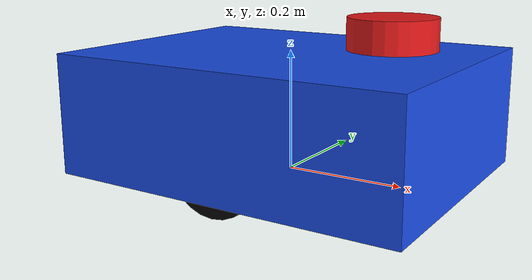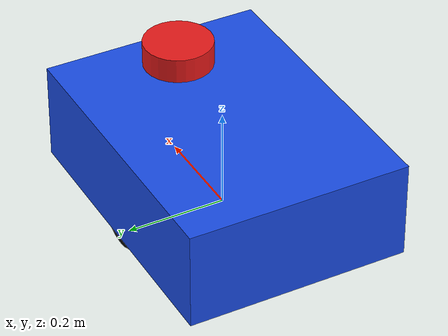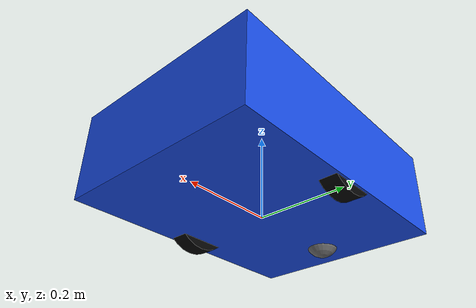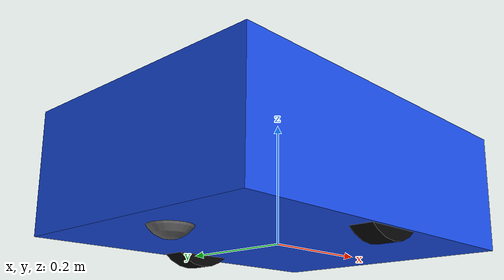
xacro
<?xml version="1.0"?>
<robot name="server_clean_robot" xmlns:xacro="http://www.ros.org/wiki/xacro">

  <xacro:property name="base_length" value="0.60"/>
  <xacro:property name="base_width" value="0.45"/>
  <xacro:property name="base_height" value="0.20"/>
  <xacro:property name="wheel_radius" value="0.08"/>
  <xacro:property name="wheel_width" value="0.04"/>
  <xacro:property name="wheel_separation" value="0.40"/>

  <link name="base_footprint"/>

  <joint name="base_footprint_joint" type="fixed">
    <parent link="base_footprint"/>
    <child link="base_link"/>
    <origin xyz="0 0 0.10" rpy="0 0 0"/>
  </joint>

  <link name="base_link">
    <visual>
      <geometry>
        <box size="${base_length} ${base_width} ${base_height}"/>
      </geometry>
      <material name="blue">
        <color rgba="0.1 0.3 0.9 1.0"/>
      </material>
    </visual>
    <collision>
      <geometry>
        <box size="${base_length} ${base_width} ${base_height}"/>
      </geometry>
    </collision>
    <inertial>
      <mass value="15.0"/>
      <origin xyz="0 0 0"/>
      <inertia ixx="0.35" ixy="0" ixz="0" iyy="0.50" iyz="0" izz="0.60"/>
    </inertial>
  </link>

  <link name="left_wheel_link">
    <visual>
      <origin xyz="0 0 0" rpy="1.5708 0 0"/>
      <geometry>
        <cylinder radius="${wheel_radius}" length="${wheel_width}"/>
      </geometry>
      <material name="black">
        <color rgba="0.02 0.02 0.02 1"/>
      </material>
    </visual>
    <collision>
      <origin xyz="0 0 0" rpy="1.5708 0 0"/>
      <geometry>
        <cylinder radius="${wheel_radius}" length="${wheel_width}"/>
      </geometry>
    </collision>
    <inertial>
      <mass value="1.0"/>
      <origin xyz="0 0 0"/>
      <inertia ixx="0.003" ixy="0" ixz="0" iyy="0.003" iyz="0" izz="0.006"/>
    </inertial>
  </link>

  <joint name="left_wheel_joint" type="continuous">
    <parent link="base_link"/>
    <child link="left_wheel_link"/>
    <origin xyz="0 ${wheel_separation/2} -0.04" rpy="0 0 0"/>
    <axis xyz="0 1 0"/>
  </joint>

  <link name="right_wheel_link">
    <visual>
      <origin xyz="0 0 0" rpy="1.5708 0 0"/>
      <geometry>
        <cylinder radius="${wheel_radius}" length="${wheel_width}"/>
      </geometry>
      <material name="black">
        <color rgba="0.02 0.02 0.02 1"/>
      </material>
    </visual>
    <collision>
      <origin xyz="0 0 0" rpy="1.5708 0 0"/>
      <geometry>
        <cylinder radius="${wheel_radius}" length="${wheel_width}"/>
      </geometry>
    </collision>
    <inertial>
      <mass value="1.0"/>
      <origin xyz="0 0 0"/>
      <inertia ixx="0.003" ixy="0" ixz="0" iyy="0.003" iyz="0" izz="0.006"/>
    </inertial>
  </link>

  <joint name="right_wheel_joint" type="continuous">
    <parent link="base_link"/>
    <child link="right_wheel_link"/>
    <origin xyz="0 -${wheel_separation/2} -0.04" rpy="0 0 0"/>
    <axis xyz="0 1 0"/>
  </joint>

  <link name="caster_link">
    <visual>
      <geometry>
        <sphere radius="0.04"/>
      </geometry>
      <material name="gray">
        <color rgba="0.4 0.4 0.4 1"/>
      </material>
    </visual>
    <collision>
      <geometry>
        <sphere radius="0.04"/>
      </geometry>
    </collision>
    <inertial>
      <mass value="0.2"/>
      <origin xyz="0 0 0"/>
      <inertia ixx="0.0001" ixy="0" ixz="0" iyy="0.0001" iyz="0" izz="0.0001"/>
    </inertial>
  </link>

  <joint name="caster_joint" type="fixed">
    <parent link="base_link"/>
    <child link="caster_link"/>
    <origin xyz="-0.22 0 -0.08" rpy="0 0 0"/>
  </joint>

  <link name="laser_link">
    <visual>
      <geometry>
        <cylinder radius="0.07" length="0.05"/>
      </geometry>
      <material name="red">
        <color rgba="0.9 0.1 0.1 1"/>
      </material>
    </visual>
    <collision>
      <geometry>
        <cylinder radius="0.07" length="0.05"/>
      </geometry>
    </collision>
    <inertial>
      <mass value="0.2"/>
      <origin xyz="0 0 0"/>
      <inertia ixx="0.0002" ixy="0" ixz="0" iyy="0.0002" iyz="0" izz="0.0002"/>
    </inertial>
  </link>

  <joint name="laser_joint" type="fixed">
    <parent link="base_link"/>
    <child link="laser_link"/>
    <origin xyz="0.18 0 0.14" rpy="0 0 0"/>
  </joint>

  <gazebo reference="base_link">
    <material>Gazebo/Blue</material>
  </gazebo>

  <gazebo reference="left_wheel_link">
    <material>Gazebo/Black</material>
    <mu1>1.0</mu1>
    <mu2>1.0</mu2>
  </gazebo>

  <gazebo reference="right_wheel_link">
    <material>Gazebo/Black</material>
    <mu1>1.0</mu1>
    <mu2>1.0</mu2>
  </gazebo>

  <gazebo reference="laser_link">
    <material>Gazebo/Red</material>
    <sensor type="ray" name="laser_sensor">
      <pose>0 0 0 0 0 0</pose>
      <visualize>true</visualize>
      <update_rate>10</update_rate>
      <ray>
        <scan>
          <horizontal>
            <samples>720</samples>
            <resolution>1</resolution>
            <min_angle>-3.14159</min_angle>
            <max_angle>3.14159</max_angle>
          </horizontal>
        </scan>
        <range>
          <min>0.12</min>
          <max>8.0</max>
          <resolution>0.01</resolution>
        </range>
      </ray>
      <plugin name="gazebo_ros_laser" filename="libgazebo_ros_laser.so">
        <topicName>/scan</topicName>
        <frameName>laser_link</frameName>
      </plugin>
    </sensor>
  </gazebo>

  <gazebo>
    <plugin name="diff_drive_controller" filename="libgazebo_ros_diff_drive.so">
      <alwaysOn>true</alwaysOn>
      <updateRate>50</updateRate>

      <leftJoint>left_wheel_joint</leftJoint>
      <rightJoint>right_wheel_joint</rightJoint>

      <wheelSeparation>${wheel_separation}</wheelSeparation>
      <wheelDiameter>${2*wheel_radius}</wheelDiameter>

      <torque>5</torque>

      <commandTopic>/cmd_vel</commandTopic>
      <odometryTopic>/odom</odometryTopic>
      <odometryFrame>odom</odometryFrame>
      <robotBaseFrame>base_footprint</robotBaseFrame>

      <publishWheelTF>true</publishWheelTF>
      <publishOdomTF>true</publishOdomTF>
      <publishWheelJointState>true</publishWheelJointState>
    </plugin>
  </gazebo>

</robot>
